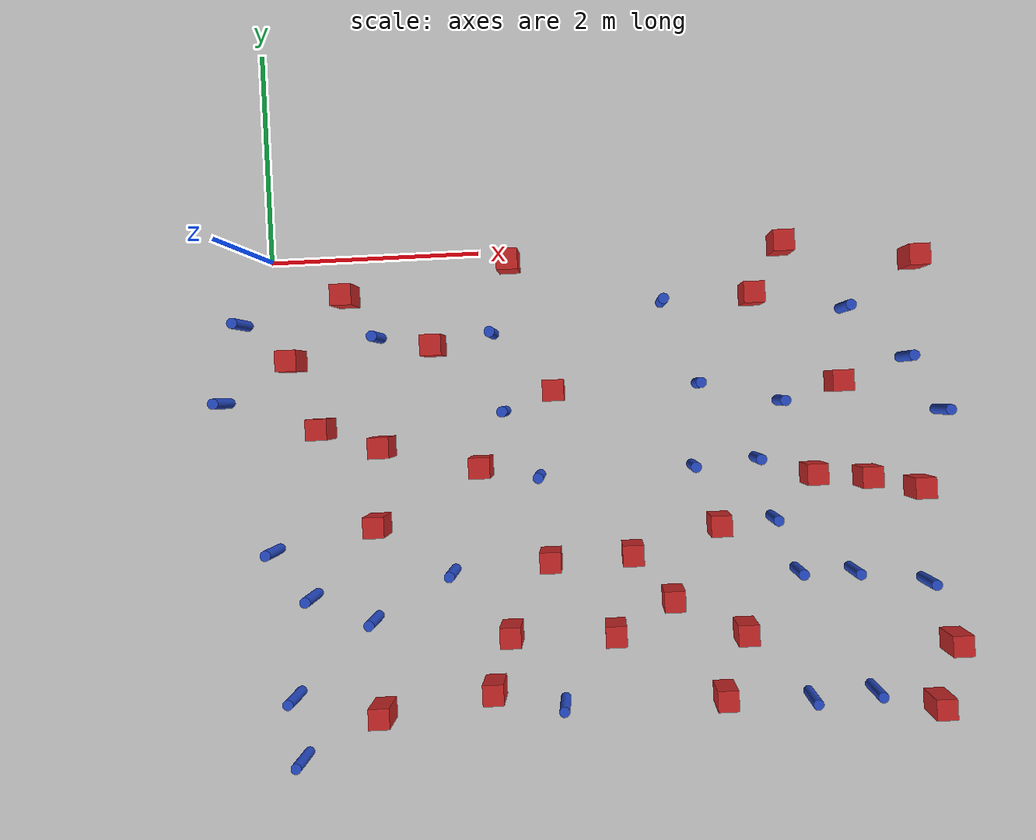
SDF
<sdf version="1.6">
 <world name="default">
  <model name="ground_plane">
   <static>1</static>
   <link name="link">
    <collision name="collision">
     <geometry><plane><normal>0 0 1</normal><size>100 100</size></plane></geometry>
     <surface><friction><ode><mu>100</mu><mu2>50</mu2></ode></friction></surface>
    </collision>
    <visual name="visual">
     <cast_shadows>0</cast_shadows>
     <geometry><plane><normal>0 0 1</normal><size>100 100</size></plane></geometry>
     <material>
      <ambient>1.0 1.0 1.0 1.0</ambient>
      <diffuse>0.8 0.8 0.8 1.0</diffuse>
      <specular>0.01 0.01 0.01 1.000000</specular>
     </material>
    </visual>
   </link>
  </model>
  <model name="square_post_obstacle1">
   <static>true</static>
   <pose>2.30079140672 -0.113341108883 1.91545236811e-07 -7.35059704564e-06 1.12565212e-07 2.39332434364e-05</pose>
   <link name="link">
    <pose>0 0 0.25 0 -0 0</pose>
    <inertial>
     <mass>100</mass>
     <inertia>
      <ixx>0.166667</ixx>
      <ixy>0</ixy>
      <ixz>0</ixz>
      <iyy>0.166667</iyy>
      <iyz>0</iyz>
      <izz>0.166667</izz>
     </inertia>
    </inertial>
    <collision name="collision"><geometry><box><size>.2 .2 .5</size></box></geometry></collision>
    <visual name="visual">
     <geometry><box><size>.2 .2 .5</size></box></geometry>
     <material>
      <script><name>Gazebo/Red</name><uri>file://media/materials/scripts/gazebo.material</uri></script>
     </material>
    </visual>
   </link>
  </model>
  <model name="pole_obstacle1">
   <static>true</static>
   <pose>2.11567827239 -0.791708799903 7.38925637345e-09 -8.471706928e-08 1.24976765177e-08 -1.74513093012e-07</pose>
   <link name="link">
    <pose>0 0 0.3 0 -0 0</pose>
    <inertial>
     <mass>1</mass>
     <inertia><ixx>0.145833</ixx><ixy>0</ixy><ixz>0</ixz><iyy>0.145833</iyy><iyz>0</iyz><izz>0.125</izz></inertia>
    </inertial>
    <collision name="collision">
     <geometry><cylinder><radius>0.05</radius><length>.6</length></cylinder></geometry>
    </collision>
    <visual name="visual">
     <geometry><cylinder><radius>0.05</radius><length>.6</length></cylinder></geometry>
     <material>
      <script><name>Gazebo/Blue</name><uri>file://media/materials/scripts/gazebo.material</uri></script>
     </material>
    </visual>
   </link>
  </model>
  <model name="pole_obstacle2">
   <static>true</static>
   <pose>6.14572191631 -3.33567524918 7.38925637345e-09 -8.47170692798e-08 1.24976764937e-08 -1.74513093023e-07</pose>
   <link name="link">
    <pose>0 0 0.3 0 -0 0</pose>
    <inertial>
     <mass>1</mass>
     <inertia><ixx>0.145833</ixx><ixy>0</ixy><ixz>0</ixz><iyy>0.145833</iyy><iyz>0</iyz><izz>0.125</izz></inertia>
    </inertial>
    <collision name="collision">
     <geometry><cylinder><radius>0.05</radius><length>.6</length></cylinder></geometry>
    </collision>
    <visual name="visual">
     <geometry><cylinder><radius>0.05</radius><length>.6</length></cylinder></geometry>
     <material>
      <script><name>Gazebo/Blue</name><uri>file://media/materials/scripts/gazebo.material</uri></script>
     </material>
    </visual>
   </link>
  </model>
  <model name="square_post_obstacle5">
   <static>true</static>
   <pose>4.39867281722 -3.73941172745 1.91545236811e-07 -7.35059704564e-06 1.12565212e-07 2.39332434364e-05</pose>
   <link name="link">
    <pose>0 0 0.25 0 -0 0</pose>
    <inertial>
     <mass>100</mass>
     <inertia>
      <ixx>0.166667</ixx>
      <ixy>0</ixy>
      <ixz>0</ixz>
      <iyy>0.166667</iyy>
      <iyz>0</iyz>
      <izz>0.166667</izz>
     </inertia>
    </inertial>
    <collision name="collision"><geometry><box><size>.2 .2 .5</size></box></geometry></collision>
    <visual name="visual">
     <geometry><box><size>.2 .2 .5</size></box></geometry>
     <material>
      <script><name>Gazebo/Red</name><uri>file://media/materials/scripts/gazebo.material</uri></script>
     </material>
    </visual>
   </link>
  </model>
  <model name="square_post_obstacle7">
   <static>true</static>
   <pose>0.733176663758 -0.373524283608 1.91545236811e-07 -7.35059704564e-06 1.12565212e-07 2.39332434364e-05</pose>
   <link name="link">
    <pose>0 0 0.25 0 -0 0</pose>
    <inertial>
     <mass>100</mass>
     <inertia>
      <ixx>0.166667</ixx>
      <ixy>0</ixy>
      <ixz>0</ixz>
      <iyy>0.166667</iyy>
      <iyz>0</iyz>
      <izz>0.166667</izz>
     </inertia>
    </inertial>
    <collision name="collision"><geometry><box><size>.2 .2 .5</size></box></geometry></collision>
    <visual name="visual">
     <geometry><box><size>.2 .2 .5</size></box></geometry>
     <material>
      <script><name>Gazebo/Red</name><uri>file://media/materials/scripts/gazebo.material</uri></script>
     </material>
    </visual>
   </link>
  </model>
  <model name="square_post_obstacle10">
   <static>true</static>
   <pose>0.908520756154 -4.35322302698 1.91545236811e-07 -7.35059704564e-06 1.12565212e-07 2.39332434364e-05</pose>
   <link name="link">
    <pose>0 0 0.25 0 -0 0</pose>
    <inertial>
     <mass>100</mass>
     <inertia>
      <ixx>0.166667</ixx>
      <ixy>0</ixy>
      <ixz>0</ixz>
      <iyy>0.166667</iyy>
      <iyz>0</iyz>
      <izz>0.166667</izz>
     </inertia>
    </inertial>
    <collision name="collision"><geometry><box><size>.2 .2 .5</size></box></geometry></collision>
    <visual name="visual">
     <geometry><box><size>.2 .2 .5</size></box></geometry>
     <material>
      <script><name>Gazebo/Red</name><uri>file://media/materials/scripts/gazebo.material</uri></script>
     </material>
    </visual>
   </link>
  </model>
  <model name="square_post_obstacle13">
   <static>true</static>
   <pose>5.39153406921 -1.39861252525 1.91545236811e-07 -7.35059704564e-06 1.12565212e-07 2.39332434364e-05</pose>
   <link name="link">
    <pose>0 0 0.25 0 -0 0</pose>
    <inertial>
     <mass>100</mass>
     <inertia>
      <ixx>0.166667</ixx>
      <ixy>0</ixy>
      <ixz>0</ixz>
      <iyy>0.166667</iyy>
      <iyz>0</iyz>
      <izz>0.166667</izz>
     </inertia>
    </inertial>
    <collision name="collision"><geometry><box><size>.2 .2 .5</size></box></geometry></collision>
    <visual name="visual">
     <geometry><box><size>.2 .2 .5</size></box></geometry>
     <material>
      <script><name>Gazebo/Red</name><uri>file://media/materials/scripts/gazebo.material</uri></script>
     </material>
    </visual>
   </link>
  </model>
  <model name="square_post_obstacle15">
   <static>true</static>
   <pose>1.01795629702 -1.82561163222 1.91545236811e-07 -7.35059704564e-06 1.12565212e-07 2.39332434364e-05</pose>
   <link name="link">
    <pose>0 0 0.25 0 -0 0</pose>
    <inertial>
     <mass>100</mass>
     <inertia>
      <ixx>0.166667</ixx>
      <ixy>0</ixy>
      <ixz>0</ixz>
      <iyy>0.166667</iyy>
      <iyz>0</iyz>
      <izz>0.166667</izz>
     </inertia>
    </inertial>
    <collision name="collision"><geometry><box><size>.2 .2 .5</size></box></geometry></collision>
    <visual name="visual">
     <geometry><box><size>.2 .2 .5</size></box></geometry>
     <material>
      <script><name>Gazebo/Red</name><uri>file://media/materials/scripts/gazebo.material</uri></script>
     </material>
    </visual>
   </link>
  </model>
  <model name="square_post_obstacle16">
   <static>true</static>
   <pose>4.59854409013 -0.532294423076 1.91545236811e-07 -7.35059704564e-06 1.12565212e-07 2.39332434364e-05</pose>
   <link name="link">
    <pose>0 0 0.25 0 -0 0</pose>
    <inertial>
     <mass>100</mass>
     <inertia>
      <ixx>0.166667</ixx>
      <ixy>0</ixy>
      <ixz>0</ixz>
      <iyy>0.166667</iyy>
      <iyz>0</iyz>
      <izz>0.166667</izz>
     </inertia>
    </inertial>
    <collision name="collision"><geometry><box><size>.2 .2 .5</size></box></geometry></collision>
    <visual name="visual">
     <geometry><box><size>.2 .2 .5</size></box></geometry>
     <material>
      <script><name>Gazebo/Red</name><uri>file://media/materials/scripts/gazebo.material</uri></script>
     </material>
    </visual>
   </link>
  </model>
  <model name="pole_obstacle10">
   <static>true</static>
   <pose>6.03867695936 -1.1972389349 7.38925637345e-09 -8.471706928e-08 1.24976765134e-08 -1.74513093015e-07</pose>
   <link name="link">
    <pose>0 0 0.3 0 -0 0</pose>
    <inertial>
     <mass>1</mass>
     <inertia><ixx>0.145833</ixx><ixy>0</ixy><ixz>0</ixz><iyy>0.145833</iyy><iyz>0</iyz><izz>0.125</izz></inertia>
    </inertial>
    <collision name="collision">
     <geometry><cylinder><radius>0.05</radius><length>.6</length></cylinder></geometry>
    </collision>
    <visual name="visual">
     <geometry><cylinder><radius>0.05</radius><length>.6</length></cylinder></geometry>
     <material>
      <script><name>Gazebo/Blue</name><uri>file://media/materials/scripts/gazebo.material</uri></script>
     </material>
    </visual>
   </link>
  </model>
  <model name="square_post_obstacle31">
   <static>true</static>
   <pose>6.16114094177 -0.252760421384 1.91545236811e-07 -7.35059704564e-06 1.12565212e-07 2.39332434364e-05</pose>
   <link name="link">
    <pose>0 0 0.25 0 -0 0</pose>
    <inertial>
     <mass>100</mass>
     <inertia>
      <ixx>0.166667</ixx>
      <ixy>0</ixy>
      <ixz>0</ixz>
      <iyy>0.166667</iyy>
      <iyz>0</iyz>
      <izz>0.166667</izz>
     </inertia>
    </inertial>
    <collision name="collision"><geometry><box><size>.2 .2 .5</size></box></geometry></collision>
    <visual name="visual">
     <geometry><box><size>.2 .2 .5</size></box></geometry>
     <material>
      <script><name>Gazebo/Red</name><uri>file://media/materials/scripts/gazebo.material</uri></script>
     </material>
    </visual>
   </link>
  </model>
  <model name="square_post_obstacle38">
   <static>true</static>
   <pose>0.939679087753 -2.56736024644 1.91545236811e-07 -7.35059704564e-06 1.12565212e-07 2.39332434364e-05</pose>
   <link name="link">
    <pose>0 0 0.25 0 -0 0</pose>
    <inertial>
     <mass>100</mass>
     <inertia>
      <ixx>0.166667</ixx>
      <ixy>0</ixy>
      <ixz>0</ixz>
      <iyy>0.166667</iyy>
      <iyz>0</iyz>
      <izz>0.166667</izz>
     </inertia>
    </inertial>
    <collision name="collision"><geometry><box><size>.2 .2 .5</size></box></geometry></collision>
    <visual name="visual">
     <geometry><box><size>.2 .2 .5</size></box></geometry>
     <material>
      <script><name>Gazebo/Red</name><uri>file://media/materials/scripts/gazebo.material</uri></script>
     </material>
    </visual>
   </link>
  </model>
  <model name="square_post_obstacle51">
   <static>true</static>
   <pose>5.11152029376 -2.26554256826 1.91545236811e-07 -7.35059704564e-06 1.12565212e-07 2.39332434364e-05</pose>
   <link name="link">
    <pose>0 0 0.25 0 -0 0</pose>
    <inertial>
     <mass>100</mass>
     <inertia>
      <ixx>0.166667</ixx>
      <ixy>0</ixy>
      <ixz>0</ixz>
      <iyy>0.166667</iyy>
      <iyz>0</iyz>
      <izz>0.166667</izz>
     </inertia>
    </inertial>
    <collision name="collision"><geometry><box><size>.2 .2 .5</size></box></geometry></collision>
    <visual name="visual">
     <geometry><box><size>.2 .2 .5</size></box></geometry>
     <material>
      <script><name>Gazebo/Red</name><uri>file://media/materials/scripts/gazebo.material</uri></script>
     </material>
    </visual>
   </link>
  </model>
  <model name="square_post_obstacle53">
   <static>true</static>
   <pose>0.192815053591 -0.969705318116 1.91545236811e-07 -7.35059704564e-06 1.12565212e-07 2.39332434364e-05</pose>
   <link name="link">
    <pose>0 0 0.25 0 -0 0</pose>
    <inertial>
     <mass>100</mass>
     <inertia>
      <ixx>0.166667</ixx>
      <ixy>0</ixy>
      <ixz>0</ixz>
      <iyy>0.166667</iyy>
      <iyz>0</iyz>
      <izz>0.166667</izz>
     </inertia>
    </inertial>
    <collision name="collision"><geometry><box><size>.2 .2 .5</size></box></geometry></collision>
    <visual name="visual">
     <geometry><box><size>.2 .2 .5</size></box></geometry>
     <material>
      <script><name>Gazebo/Red</name><uri>file://media/materials/scripts/gazebo.material</uri></script>
     </material>
    </visual>
   </link>
  </model>
  <model name="square_post_obstacle54">
   <static>true</static>
   <pose>4.8971762373 -0.0615124609382 1.91545236811e-07 -7.35059704564e-06 1.12565212e-07 2.39332434364e-05</pose>
   <link name="link">
    <pose>0 0 0.25 0 -0 0</pose>
    <inertial>
     <mass>100</mass>
     <inertia>
      <ixx>0.166667</ixx>
      <ixy>0</ixy>
      <ixz>0</ixz>
      <iyy>0.166667</iyy>
      <iyz>0</iyz>
      <izz>0.166667</izz>
     </inertia>
    </inertial>
    <collision name="collision"><geometry><box><size>.2 .2 .5</size></box></geometry></collision>
    <visual name="visual">
     <geometry><box><size>.2 .2 .5</size></box></geometry>
     <material>
      <script><name>Gazebo/Red</name><uri>file://media/materials/scripts/gazebo.material</uri></script>
     </material>
    </visual>
   </link>
  </model>
  <model name="pole_obstacle55">
   <static>true</static>
   <pose>4.05408893572 -1.35647142487 7.38925637345e-09 -8.471706928e-08 1.24976765134e-08 -1.74513093015e-07</pose>
   <link name="link">
    <pose>0 0 0.3 0 -0 0</pose>
    <inertial>
     <mass>1</mass>
     <inertia><ixx>0.145833</ixx><ixy>0</ixy><ixz>0</ixz><iyy>0.145833</iyy><iyz>0</iyz><izz>0.125</izz></inertia>
    </inertial>
    <collision name="collision">
     <geometry><cylinder><radius>0.05</radius><length>.6</length></cylinder></geometry>
    </collision>
    <visual name="visual">
     <geometry><cylinder><radius>0.05</radius><length>.6</length></cylinder></geometry>
     <material>
      <script><name>Gazebo/Blue</name><uri>file://media/materials/scripts/gazebo.material</uri></script>
     </material>
    </visual>
   </link>
  </model>
  <model name="pole_obstacle56">
   <static>true</static>
   <pose>-0.0512441013859 -2.76988041171 7.38925637345e-09 -8.47170692793e-08 1.24976764354e-08 -1.74513093044e-07</pose>
   <link name="link">
    <pose>0 0 0.3 0 -0 0</pose>
    <inertial>
     <mass>1</mass>
     <inertia><ixx>0.145833</ixx><ixy>0</ixy><ixz>0</ixz><iyy>0.145833</iyy><iyz>0</iyz><izz>0.125</izz></inertia>
    </inertial>
    <collision name="collision">
     <geometry><cylinder><radius>0.05</radius><length>.6</length></cylinder></geometry>
    </collision>
    <visual name="visual">
     <geometry><cylinder><radius>0.05</radius><length>.6</length></cylinder></geometry>
     <material>
      <script><name>Gazebo/Blue</name><uri>file://media/materials/scripts/gazebo.material</uri></script>
     </material>
    </visual>
   </link>
  </model>
  <model name="pole_obstacle59">
   <static>true</static>
   <pose>0.876313427271 -3.46293113963 7.38925637345e-09 -8.47170692799e-08 1.2497676509e-08 -1.74513093016e-07</pose>
   <link name="link">
    <pose>0 0 0.3 0 -0 0</pose>
    <inertial>
     <mass>1</mass>
     <inertia><ixx>0.145833</ixx><ixy>0</ixy><ixz>0</ixz><iyy>0.145833</iyy><iyz>0</iyz><izz>0.125</izz></inertia>
    </inertial>
    <collision name="collision">
     <geometry><cylinder><radius>0.05</radius><length>.6</length></cylinder></geometry>
    </collision>
    <visual name="visual">
     <geometry><cylinder><radius>0.05</radius><length>.6</length></cylinder></geometry>
     <material>
      <script><name>Gazebo/Blue</name><uri>file://media/materials/scripts/gazebo.material</uri></script>
     </material>
    </visual>
   </link>
  </model>
  <model name="square_post_obstacle68">
   <static>true</static>
   <pose>5.62580793836 -2.31774451256 1.91545236811e-07 -7.35059704564e-06 1.12565212e-07 2.39332434364e-05</pose>
   <link name="link">
    <pose>0 0 0.25 0 -0 0</pose>
    <inertial>
     <mass>100</mass>
     <inertia>
      <ixx>0.166667</ixx>
      <ixy>0</ixy>
      <ixz>0</ixz>
      <iyy>0.166667</iyy>
      <iyz>0</iyz>
      <izz>0.166667</izz>
     </inertia>
    </inertial>
    <collision name="collision"><geometry><box><size>.2 .2 .5</size></box></geometry></collision>
    <visual name="visual">
     <geometry><box><size>.2 .2 .5</size></box></geometry>
     <material>
      <script><name>Gazebo/Red</name><uri>file://media/materials/scripts/gazebo.material</uri></script>
     </material>
    </visual>
   </link>
  </model>
  <model name="pole_obstacle69">
   <static>true</static>
   <pose>5.60208381373 -4.34940651973 7.38925637345e-09 -8.47170692796e-08 1.24976764786e-08 -1.74513093032e-07</pose>
   <link name="link">
    <pose>0 0 0.3 0 -0 0</pose>
    <inertial>
     <mass>1</mass>
     <inertia><ixx>0.145833</ixx><ixy>0</ixy><ixz>0</ixz><iyy>0.145833</iyy><iyz>0</iyz><izz>0.125</izz></inertia>
    </inertial>
    <collision name="collision">
     <geometry><cylinder><radius>0.05</radius><length>.6</length></cylinder></geometry>
    </collision>
    <visual name="visual">
     <geometry><cylinder><radius>0.05</radius><length>.6</length></cylinder></geometry>
     <material>
      <script><name>Gazebo/Blue</name><uri>file://media/materials/scripts/gazebo.material</uri></script>
     </material>
    </visual>
   </link>
  </model>
  <model name="square_post_obstacle78">
   <static>true</static>
   <pose>2.17065450185 -3.65672462471 1.91545236811e-07 -7.35059704564e-06 1.12565212e-07 2.39332434364e-05</pose>
   <link name="link">
    <pose>0 0 0.25 0 -0 0</pose>
    <inertial>
     <mass>100</mass>
     <inertia>
      <ixx>0.166667</ixx>
      <ixy>0</ixy>
      <ixz>0</ixz>
      <iyy>0.166667</iyy>
      <iyz>0</iyz>
      <izz>0.166667</izz>
     </inertia>
    </inertial>
    <collision name="collision"><geometry><box><size>.2 .2 .5</size></box></geometry></collision>
    <visual name="visual">
     <geometry><box><size>.2 .2 .5</size></box></geometry>
     <material>
      <script><name>Gazebo/Red</name><uri>file://media/materials/scripts/gazebo.material</uri></script>
     </material>
    </visual>
   </link>
  </model>
  <model name="square_post_obstacle80">
   <static>true</static>
   <pose>3.16087847858 -3.69235327206 1.91545236811e-07 -7.35059704564e-06 1.12565212e-07 2.39332434364e-05</pose>
   <link name="link">
    <pose>0 0 0.25 0 -0 0</pose>
    <inertial>
     <mass>100</mass>
     <inertia>
      <ixx>0.166667</ixx>
      <ixy>0</ixy>
      <ixz>0</ixz>
      <iyy>0.166667</iyy>
      <iyz>0</iyz>
      <izz>0.166667</izz>
     </inertia>
    </inertial>
    <collision name="collision"><geometry><box><size>.2 .2 .5</size></box></geometry></collision>
    <visual name="visual">
     <geometry><box><size>.2 .2 .5</size></box></geometry>
     <material>
      <script><name>Gazebo/Red</name><uri>file://media/materials/scripts/gazebo.material</uri></script>
     </material>
    </visual>
   </link>
  </model>
  <model name="pole_obstacle90">
   <static>true</static>
   <pose>4.92131051116 -3.18254481066 7.38925637345e-09 -8.47170692798e-08 1.24976764937e-08 -1.74513093023e-07</pose>
   <link name="link">
    <pose>0 0 0.3 0 -0 0</pose>
    <inertial>
     <mass>1</mass>
     <inertia><ixx>0.145833</ixx><ixy>0</ixy><ixz>0</ixz><iyy>0.145833</iyy><iyz>0</iyz><izz>0.125</izz></inertia>
    </inertial>
    <collision name="collision">
     <geometry><cylinder><radius>0.05</radius><length>.6</length></cylinder></geometry>
    </collision>
    <visual name="visual">
     <geometry><cylinder><radius>0.05</radius><length>.6</length></cylinder></geometry>
     <material>
      <script><name>Gazebo/Blue</name><uri>file://media/materials/scripts/gazebo.material</uri></script>
     </material>
    </visual>
   </link>
  </model>
  <model name="square_post_obstacle87">
   <static>true</static>
   <pose>2.6758172485 -1.36338023564 1.91545236811e-07 -7.35059704564e-06 1.12565212e-07 2.39332434364e-05</pose>
   <link name="link">
    <pose>0 0 0.25 0 -0 0</pose>
    <inertial>
     <mass>100</mass>
     <inertia>
      <ixx>0.166667</ixx>
      <ixy>0</ixy>
      <ixz>0</ixz>
      <iyy>0.166667</iyy>
      <iyz>0</iyz>
      <izz>0.166667</izz>
     </inertia>
    </inertial>
    <collision name="collision"><geometry><box><size>.2 .2 .5</size></box></geometry></collision>
    <visual name="visual">
     <geometry><box><size>.2 .2 .5</size></box></geometry>
     <material>
      <script><name>Gazebo/Red</name><uri>file://media/materials/scripts/gazebo.material</uri></script>
     </material>
    </visual>
   </link>
  </model>
  <model name="pole_obstacle108">
   <static>true</static>
   <pose>4.57885635576 -2.09597610602 7.38925637345e-09 -8.47170692798e-08 1.24976764937e-08 -1.74513093023e-07</pose>
   <link name="link">
    <pose>0 0 0.3 0 -0 0</pose>
    <inertial>
     <mass>1</mass>
     <inertia><ixx>0.145833</ixx><ixy>0</ixy><ixz>0</ixz><iyy>0.145833</iyy><iyz>0</iyz><izz>0.125</izz></inertia>
    </inertial>
    <collision name="collision">
     <geometry><cylinder><radius>0.05</radius><length>.6</length></cylinder></geometry>
    </collision>
    <visual name="visual">
     <geometry><cylinder><radius>0.05</radius><length>.6</length></cylinder></geometry>
     <material>
      <script><name>Gazebo/Blue</name><uri>file://media/materials/scripts/gazebo.material</uri></script>
     </material>
    </visual>
   </link>
  </model>
  <model name="pole_obstacle109">
   <static>true</static>
   <pose>0.0940463464536 -4.15824679124 7.38925637345e-09 -8.47170692799e-08 1.24976765062e-08 -1.74513093018e-07</pose>
   <link name="link">
    <pose>0 0 0.3 0 -0 0</pose>
    <inertial>
     <mass>1</mass>
     <inertia><ixx>0.145833</ixx><ixy>0</ixy><ixz>0</ixz><iyy>0.145833</iyy><iyz>0</iyz><izz>0.125</izz></inertia>
    </inertial>
    <collision name="collision">
     <geometry><cylinder><radius>0.05</radius><length>.6</length></cylinder></geometry>
    </collision>
    <visual name="visual">
     <geometry><cylinder><radius>0.05</radius><length>.6</length></cylinder></geometry>
     <material>
      <script><name>Gazebo/Blue</name><uri>file://media/materials/scripts/gazebo.material</uri></script>
     </material>
    </visual>
   </link>
  </model>
  <model name="square_post_obstacle99">
   <static>true</static>
   <pose>6.11551478328 -2.44123113113 1.91545236811e-07 -7.35059704564e-06 1.12565212e-07 2.39332434364e-05</pose>
   <link name="link">
    <pose>0 0 0.25 0 -0 0</pose>
    <inertial>
     <mass>100</mass>
     <inertia>
      <ixx>0.166667</ixx>
      <ixy>0</ixy>
      <ixz>0</ixz>
      <iyy>0.166667</iyy>
      <iyz>0</iyz>
      <izz>0.166667</izz>
     </inertia>
    </inertial>
    <collision name="collision"><geometry><box><size>.2 .2 .5</size></box></geometry></collision>
    <visual name="visual">
     <geometry><box><size>.2 .2 .5</size></box></geometry>
     <material>
      <script><name>Gazebo/Red</name><uri>file://media/materials/scripts/gazebo.material</uri></script>
     </material>
    </visual>
   </link>
  </model>
  <model name="pole_obstacle115">
   <static>true</static>
   <pose>1.64175488709 -3.04700240772 7.38925637345e-09 -8.47170692799e-08 1.24976765053e-08 -1.74513093017e-07</pose>
   <link name="link">
    <pose>0 0 0.3 0 -0 0</pose>
    <inertial>
     <mass>1</mass>
     <inertia><ixx>0.145833</ixx><ixy>0</ixy><ixz>0</ixz><iyy>0.145833</iyy><iyz>0</iyz><izz>0.125</izz></inertia>
    </inertial>
    <collision name="collision">
     <geometry><cylinder><radius>0.05</radius><length>.6</length></cylinder></geometry>
    </collision>
    <visual name="visual">
     <geometry><cylinder><radius>0.05</radius><length>.6</length></cylinder></geometry>
     <material>
      <script><name>Gazebo/Blue</name><uri>file://media/materials/scripts/gazebo.material</uri></script>
     </material>
    </visual>
   </link>
  </model>
  <model name="square_post_obstacle104">
   <static>true</static>
   <pose>1.54926097011 -0.883187561532 1.91545236811e-07 -7.35059704564e-06 1.12565212e-07 2.39332434364e-05</pose>
   <link name="link">
    <pose>0 0 0.25 0 -0 0</pose>
    <inertial>
     <mass>100</mass>
     <inertia>
      <ixx>0.166667</ixx>
      <ixy>0</ixy>
      <ixz>0</ixz>
      <iyy>0.166667</iyy>
      <iyz>0</iyz>
      <izz>0.166667</izz>
     </inertia>
    </inertial>
    <collision name="collision"><geometry><box><size>.2 .2 .5</size></box></geometry></collision>
    <visual name="visual">
     <geometry><box><size>.2 .2 .5</size></box></geometry>
     <material>
      <script><name>Gazebo/Red</name><uri>file://media/materials/scripts/gazebo.material</uri></script>
     </material>
    </visual>
   </link>
  </model>
  <model name="pole_obstacle119">
   <static>true</static>
   <pose>4.99891261431 -4.38830612221 7.38925637345e-09 -8.47170692796e-08 1.24976764786e-08 -1.74513093032e-07</pose>
   <link name="link">
    <pose>0 0 0.3 0 -0 0</pose>
    <inertial>
     <mass>1</mass>
     <inertia><ixx>0.145833</ixx><ixy>0</ixy><ixz>0</ixz><iyy>0.145833</iyy><iyz>0</iyz><izz>0.125</izz></inertia>
    </inertial>
    <collision name="collision">
     <geometry><cylinder><radius>0.05</radius><length>.6</length></cylinder></geometry>
    </collision>
    <visual name="visual">
     <geometry><cylinder><radius>0.05</radius><length>.6</length></cylinder></geometry>
     <material>
      <script><name>Gazebo/Blue</name><uri>file://media/materials/scripts/gazebo.material</uri></script>
     </material>
    </visual>
   </link>
  </model>
  <model name="square_post_obstacle110">
   <static>true</static>
   <pose>4.19167608932 -2.70724154361 1.91545236811e-07 -7.35059704564e-06 1.12565212e-07 2.39332434364e-05</pose>
   <link name="link">
    <pose>0 0 0.25 0 -0 0</pose>
    <inertial>
     <mass>100</mass>
     <inertia>
      <ixx>0.166667</ixx>
      <ixy>0</ixy>
      <ixz>0</ixz>
      <iyy>0.166667</iyy>
      <iyz>0</iyz>
      <izz>0.166667</izz>
     </inertia>
    </inertial>
    <collision name="collision"><geometry><box><size>.2 .2 .5</size></box></geometry></collision>
    <visual name="visual">
     <geometry><box><size>.2 .2 .5</size></box></geometry>
     <material>
      <script><name>Gazebo/Red</name><uri>file://media/materials/scripts/gazebo.material</uri></script>
     </material>
    </visual>
   </link>
  </model>
  <model name="pole_obstacle123">
   <static>true</static>
   <pose>0.141946386819 -4.74956099167 7.38925637345e-09 -8.471706928e-08 1.24976765036e-08 -1.74513093019e-07</pose>
   <link name="link">
    <pose>0 0 0.3 0 -0 0</pose>
    <inertial>
     <mass>1</mass>
     <inertia><ixx>0.145833</ixx><ixy>0</ixy><ixz>0</ixz><iyy>0.145833</iyy><iyz>0</iyz><izz>0.125</izz></inertia>
    </inertial>
    <collision name="collision">
     <geometry><cylinder><radius>0.05</radius><length>.6</length></cylinder></geometry>
    </collision>
    <visual name="visual">
     <geometry><cylinder><radius>0.05</radius><length>.6</length></cylinder></geometry>
     <material>
      <script><name>Gazebo/Blue</name><uri>file://media/materials/scripts/gazebo.material</uri></script>
     </material>
    </visual>
   </link>
  </model>
  <model name="pole_obstacle124">
   <static>true</static>
   <pose>6.35571234363 -1.71734408536 7.38925637345e-09 -8.471706928e-08 1.24976765134e-08 -1.74513093015e-07</pose>
   <link name="link">
    <pose>0 0 0.3 0 -0 0</pose>
    <inertial>
     <mass>1</mass>
     <inertia><ixx>0.145833</ixx><ixy>0</ixy><ixz>0</ixz><iyy>0.145833</iyy><iyz>0</iyz><izz>0.125</izz></inertia>
    </inertial>
    <collision name="collision">
     <geometry><cylinder><radius>0.05</radius><length>.6</length></cylinder></geometry>
    </collision>
    <visual name="visual">
     <geometry><cylinder><radius>0.05</radius><length>.6</length></cylinder></geometry>
     <material>
      <script><name>Gazebo/Blue</name><uri>file://media/materials/scripts/gazebo.material</uri></script>
     </material>
    </visual>
   </link>
  </model>
  <model name="square_post_obstacle116">
   <static>true</static>
   <pose>2.57589893028 -2.97308937479 1.91545236811e-07 -7.35059704564e-06 1.12565212e-07 2.39332434364e-05</pose>
   <link name="link">
    <pose>0 0 0.25 0 -0 0</pose>
    <inertial>
     <mass>100</mass>
     <inertia>
      <ixx>0.166667</ixx>
      <ixy>0</ixy>
      <ixz>0</ixz>
      <iyy>0.166667</iyy>
      <iyz>0</iyz>
      <izz>0.166667</izz>
     </inertia>
    </inertial>
    <collision name="collision"><geometry><box><size>.2 .2 .5</size></box></geometry></collision>
    <visual name="visual">
     <geometry><box><size>.2 .2 .5</size></box></geometry>
     <material>
      <script><name>Gazebo/Red</name><uri>file://media/materials/scripts/gazebo.material</uri></script>
     </material>
    </visual>
   </link>
  </model>
  <model name="pole_obstacle139">
   <static>true</static>
   <pose>2.64874328146 -4.34303579645 7.38925637345e-09 -8.47170692798e-08 1.24976765033e-08 -1.74513093019e-07</pose>
   <link name="link">
    <pose>0 0 0.3 0 -0 0</pose>
    <inertial>
     <mass>1</mass>
     <inertia><ixx>0.145833</ixx><ixy>0</ixy><ixz>0</ixz><iyy>0.145833</iyy><iyz>0</iyz><izz>0.125</izz></inertia>
    </inertial>
    <collision name="collision">
     <geometry><cylinder><radius>0.05</radius><length>.6</length></cylinder></geometry>
    </collision>
    <visual name="visual">
     <geometry><cylinder><radius>0.05</radius><length>.6</length></cylinder></geometry>
     <material>
      <script><name>Gazebo/Blue</name><uri>file://media/materials/scripts/gazebo.material</uri></script>
     </material>
    </visual>
   </link>
  </model>
  <model name="square_post_obstacle126">
   <static>true</static>
   <pose>3.72285098523 -3.39160508271 1.91545236811e-07 -7.35059704564e-06 1.12565212e-07 2.39332434364e-05</pose>
   <link name="link">
    <pose>0 0 0.25 0 -0 0</pose>
    <inertial>
     <mass>100</mass>
     <inertia>
      <ixx>0.166667</ixx>
      <ixy>0</ixy>
      <ixz>0</ixz>
      <iyy>0.166667</iyy>
      <iyz>0</iyz>
      <izz>0.166667</izz>
     </inertia>
    </inertial>
    <collision name="collision"><geometry><box><size>.2 .2 .5</size></box></geometry></collision>
    <visual name="visual">
     <geometry><box><size>.2 .2 .5</size></box></geometry>
     <material>
      <script><name>Gazebo/Red</name><uri>file://media/materials/scripts/gazebo.material</uri></script>
     </material>
    </visual>
   </link>
  </model>
  <model name="pole_obstacle143">
   <static>true</static>
   <pose>4.71281803096 -2.67101172031 7.38925637345e-09 -8.47170692798e-08 1.24976764937e-08 -1.74513093023e-07</pose>
   <link name="link">
    <pose>0 0 0.3 0 -0 0</pose>
    <inertial>
     <mass>1</mass>
     <inertia><ixx>0.145833</ixx><ixy>0</ixy><ixz>0</ixz><iyy>0.145833</iyy><iyz>0</iyz><izz>0.125</izz></inertia>
    </inertial>
    <collision name="collision">
     <geometry><cylinder><radius>0.05</radius><length>.6</length></cylinder></geometry>
    </collision>
    <visual name="visual">
     <geometry><cylinder><radius>0.05</radius><length>.6</length></cylinder></geometry>
     <material>
      <script><name>Gazebo/Blue</name><uri>file://media/materials/scripts/gazebo.material</uri></script>
     </material>
    </visual>
   </link>
  </model>
  <model name="square_post_obstacle135">
   <static>true</static>
   <pose>4.1761618442 -4.34227185254 1.91545236811e-07 -7.35059704564e-06 1.12565212e-07 2.39332434364e-05</pose>
   <link name="link">
    <pose>0 0 0.25 0 -0 0</pose>
    <inertial>
     <mass>100</mass>
     <inertia>
      <ixx>0.166667</ixx>
      <ixy>0</ixy>
      <ixz>0</ixz>
      <iyy>0.166667</iyy>
      <iyz>0</iyz>
      <izz>0.166667</izz>
     </inertia>
    </inertial>
    <collision name="collision"><geometry><box><size>.2 .2 .5</size></box></geometry></collision>
    <visual name="visual">
     <geometry><box><size>.2 .2 .5</size></box></geometry>
     <material>
      <script><name>Gazebo/Red</name><uri>file://media/materials/scripts/gazebo.material</uri></script>
     </material>
    </visual>
   </link>
  </model>
  <model name="pole_obstacle146">
   <static>true</static>
   <pose>2.50532626492 -2.1708749217 7.38925637345e-09 -8.47170692798e-08 1.24976764939e-08 -1.74513093025e-07</pose>
   <link name="link">
    <pose>0 0 0.3 0 -0 0</pose>
    <inertial>
     <mass>1</mass>
     <inertia><ixx>0.145833</ixx><ixy>0</ixy><ixz>0</ixz><iyy>0.145833</iyy><iyz>0</iyz><izz>0.125</izz></inertia>
    </inertial>
    <collision name="collision">
     <geometry><cylinder><radius>0.05</radius><length>.6</length></cylinder></geometry>
    </collision>
    <visual name="visual">
     <geometry><cylinder><radius>0.05</radius><length>.6</length></cylinder></geometry>
     <material>
      <script><name>Gazebo/Blue</name><uri>file://media/materials/scripts/gazebo.material</uri></script>
     </material>
    </visual>
   </link>
  </model>
  <model name="square_post_obstacle144">
   <static>true</static>
   <pose>1.98458801407 -4.18298993816 1.91545236811e-07 -7.35059704564e-06 1.12565212e-07 2.39332434364e-05</pose>
   <link name="link">
    <pose>0 0 0.25 0 -0 0</pose>
    <inertial>
     <mass>100</mass>
     <inertia>
      <ixx>0.166667</ixx>
      <ixy>0</ixy>
      <ixz>0</ixz>
      <iyy>0.166667</iyy>
      <iyz>0</iyz>
      <izz>0.166667</izz>
     </inertia>
    </inertial>
    <collision name="collision"><geometry><box><size>.2 .2 .5</size></box></geometry></collision>
    <visual name="visual">
     <geometry><box><size>.2 .2 .5</size></box></geometry>
     <material>
      <script><name>Gazebo/Red</name><uri>file://media/materials/scripts/gazebo.material</uri></script>
     </material>
    </visual>
   </link>
  </model>
  <model name="pole_obstacle157">
   <static>true</static>
   <pose>3.97181151498 -2.1388692852 7.38925637345e-09 -8.47170692796e-08 1.24976764765e-08 -1.74513093035e-07</pose>
   <link name="link">
    <pose>0 0 0.3 0 -0 0</pose>
    <inertial>
     <mass>1</mass>
     <inertia><ixx>0.145833</ixx><ixy>0</ixy><ixz>0</ixz><iyy>0.145833</iyy><iyz>0</iyz><izz>0.125</izz></inertia>
    </inertial>
    <collision name="collision">
     <geometry><cylinder><radius>0.05</radius><length>.6</length></cylinder></geometry>
    </collision>
    <visual name="visual">
     <geometry><cylinder><radius>0.05</radius><length>.6</length></cylinder></geometry>
     <material>
      <script><name>Gazebo/Blue</name><uri>file://media/materials/scripts/gazebo.material</uri></script>
     </material>
    </visual>
   </link>
  </model>
  <model name="pole_obstacle163">
   <static>true</static>
   <pose>5.47625389837 -0.700544040537 7.38925637345e-09 -8.47170692799e-08 1.24976765038e-08 -1.74513093018e-07</pose>
   <link name="link">
    <pose>0 0 0.3 0 -0 0</pose>
    <inertial>
     <mass>1</mass>
     <inertia><ixx>0.145833</ixx><ixy>0</ixy><ixz>0</ixz><iyy>0.145833</iyy><iyz>0</iyz><izz>0.125</izz></inertia>
    </inertial>
    <collision name="collision">
     <geometry><cylinder><radius>0.05</radius><length>.6</length></cylinder></geometry>
    </collision>
    <visual name="visual">
     <geometry><cylinder><radius>0.05</radius><length>.6</length></cylinder></geometry>
     <material>
      <script><name>Gazebo/Blue</name><uri>file://media/materials/scripts/gazebo.material</uri></script>
     </material>
    </visual>
   </link>
  </model>
  <model name="pole_obstacle170">
   <static>true</static>
   <pose>4.82798971888 -1.5594999057 7.38925637345e-09 -8.471706928e-08 1.24976765134e-08 -1.74513093015e-07</pose>
   <link name="link">
    <pose>0 0 0.3 0 -0 0</pose>
    <inertial>
     <mass>1</mass>
     <inertia><ixx>0.145833</ixx><ixy>0</ixy><ixz>0</ixz><iyy>0.145833</iyy><iyz>0</iyz><izz>0.125</izz></inertia>
    </inertial>
    <collision name="collision">
     <geometry><cylinder><radius>0.05</radius><length>.6</length></cylinder></geometry>
    </collision>
    <visual name="visual">
     <geometry><cylinder><radius>0.05</radius><length>.6</length></cylinder></geometry>
     <material>
      <script><name>Gazebo/Blue</name><uri>file://media/materials/scripts/gazebo.material</uri></script>
     </material>
    </visual>
   </link>
  </model>
  <model name="square_post_obstacle161">
   <static>true</static>
   <pose>6.39371514096 -3.93341052397 1.91545236811e-07 -7.35059704564e-06 1.12565212e-07 2.39332434364e-05</pose>
   <link name="link">
    <pose>0 0 0.25 0 -0 0</pose>
    <inertial>
     <mass>100</mass>
     <inertia>
      <ixx>0.166667</ixx>
      <ixy>0</ixy>
      <ixz>0</ixz>
      <iyy>0.166667</iyy>
      <iyz>0</iyz>
      <izz>0.166667</izz>
     </inertia>
    </inertial>
    <collision name="collision"><geometry><box><size>.2 .2 .5</size></box></geometry></collision>
    <visual name="visual">
     <geometry><box><size>.2 .2 .5</size></box></geometry>
     <material>
      <script><name>Gazebo/Red</name><uri>file://media/materials/scripts/gazebo.material</uri></script>
     </material>
    </visual>
   </link>
  </model>
  <model name="square_post_obstacle164">
   <static>true</static>
   <pose>0.447483641449 -1.62815499863 1.91545236811e-07 -7.35059704564e-06 1.12565212e-07 2.39332434364e-05</pose>
   <link name="link">
    <pose>0 0 0.25 0 -0 0</pose>
    <inertial>
     <mass>100</mass>
     <inertia>
      <ixx>0.166667</ixx>
      <ixy>0</ixy>
      <ixz>0</ixz>
      <iyy>0.166667</iyy>
      <iyz>0</iyz>
      <izz>0.166667</izz>
     </inertia>
    </inertial>
    <collision name="collision"><geometry><box><size>.2 .2 .5</size></box></geometry></collision>
    <visual name="visual">
     <geometry><box><size>.2 .2 .5</size></box></geometry>
     <material>
      <script><name>Gazebo/Red</name><uri>file://media/materials/scripts/gazebo.material</uri></script>
     </material>
    </visual>
   </link>
  </model>
  <model name="square_post_obstacle167">
   <static>true</static>
   <pose>6.21118749769 -4.5166251293 1.91545236811e-07 -7.35059704564e-06 1.12565212e-07 2.39332434364e-05</pose>
   <link name="link">
    <pose>0 0 0.25 0 -0 0</pose>
    <inertial>
     <mass>100</mass>
     <inertia>
      <ixx>0.166667</ixx>
      <ixy>0</ixy>
      <ixz>0</ixz>
      <iyy>0.166667</iyy>
      <iyz>0</iyz>
      <izz>0.166667</izz>
     </inertia>
    </inertial>
    <collision name="collision"><geometry><box><size>.2 .2 .5</size></box></geometry></collision>
    <visual name="visual">
     <geometry><box><size>.2 .2 .5</size></box></geometry>
     <material>
      <script><name>Gazebo/Red</name><uri>file://media/materials/scripts/gazebo.material</uri></script>
     </material>
    </visual>
   </link>
  </model>
  <model name="pole_obstacle178">
   <static>true</static>
   <pose>1.0242684985 -0.780845904981 7.38925637345e-09 -8.47170692798e-08 1.24976764942e-08 -1.74513093024e-07</pose>
   <link name="link">
    <pose>0 0 0.3 0 -0 0</pose>
    <inertial>
     <mass>1</mass>
     <inertia><ixx>0.145833</ixx><ixy>0</ixy><ixz>0</ixz><iyy>0.145833</iyy><iyz>0</iyz><izz>0.125</izz></inertia>
    </inertial>
    <collision name="collision">
     <geometry><cylinder><radius>0.05</radius><length>.6</length></cylinder></geometry>
    </collision>
    <visual name="visual">
     <geometry><cylinder><radius>0.05</radius><length>.6</length></cylinder></geometry>
     <material>
      <script><name>Gazebo/Blue</name><uri>file://media/materials/scripts/gazebo.material</uri></script>
     </material>
    </visual>
   </link>
  </model>
  <model name="square_post_obstacle186">
   <static>true</static>
   <pose>1.95184379128 -2.0581624671 1.91545236811e-07 -7.35059704564e-06 1.12565212e-07 2.39332434364e-05</pose>
   <link name="link">
    <pose>0 0 0.25 0 -0 0</pose>
    <inertial>
     <mass>100</mass>
     <inertia>
      <ixx>0.166667</ixx>
      <ixy>0</ixy>
      <ixz>0</ixz>
      <iyy>0.166667</iyy>
      <iyz>0</iyz>
      <izz>0.166667</izz>
     </inertia>
    </inertial>
    <collision name="collision"><geometry><box><size>.2 .2 .5</size></box></geometry></collision>
    <visual name="visual">
     <geometry><box><size>.2 .2 .5</size></box></geometry>
     <material>
      <script><name>Gazebo/Red</name><uri>file://media/materials/scripts/gazebo.material</uri></script>
     </material>
    </visual>
   </link>
  </model>
  <model name="square_post_obstacle194">
   <static>true</static>
   <pose>3.35488112597 -2.94446302565 1.91545236811e-07 -7.35059704564e-06 1.12565212e-07 2.39332434364e-05</pose>
   <link name="link">
    <pose>0 0 0.25 0 -0 0</pose>
    <inertial>
     <mass>100</mass>
     <inertia>
      <ixx>0.166667</ixx>
      <ixy>0</ixy>
      <ixz>0</ixz>
      <iyy>0.166667</iyy>
      <iyz>0</iyz>
      <izz>0.166667</izz>
     </inertia>
    </inertial>
    <collision name="collision"><geometry><box><size>.2 .2 .5</size></box></geometry></collision>
    <visual name="visual">
     <geometry><box><size>.2 .2 .5</size></box></geometry>
     <material>
      <script><name>Gazebo/Red</name><uri>file://media/materials/scripts/gazebo.material</uri></script>
     </material>
    </visual>
   </link>
  </model>
  <model name="pole_obstacle189">
   <static>true</static>
   <pose>5.44978000957 -3.20356997922 7.38925637345e-09 -8.47170692798e-08 1.24976764937e-08 -1.74513093023e-07</pose>
   <link name="link">
    <pose>0 0 0.3 0 -0 0</pose>
    <inertial>
     <mass>1</mass>
     <inertia><ixx>0.145833</ixx><ixy>0</ixy><ixz>0</ixz><iyy>0.145833</iyy><iyz>0</iyz><izz>0.125</izz></inertia>
    </inertial>
    <collision name="collision">
     <geometry><cylinder><radius>0.05</radius><length>.6</length></cylinder></geometry>
    </collision>
    <visual name="visual">
     <geometry><cylinder><radius>0.05</radius><length>.6</length></cylinder></geometry>
     <material>
      <script><name>Gazebo/Blue</name><uri>file://media/materials/scripts/gazebo.material</uri></script>
     </material>
    </visual>
   </link>
  </model>
  <model name="pole_obstacle206">
   <static>true</static>
   <pose>-0.261529990425 -0.602467979219 7.38925637345e-09 -8.47170692799e-08 1.24976764982e-08 -1.74513093022e-07</pose>
   <link name="link">
    <pose>0 0 0.3 0 -0 0</pose>
    <inertial>
     <mass>1</mass>
     <inertia><ixx>0.145833</ixx><ixy>0</ixy><ixz>0</ixz><iyy>0.145833</iyy><iyz>0</iyz><izz>0.125</izz></inertia>
    </inertial>
    <collision name="collision">
     <geometry><cylinder><radius>0.05</radius><length>.6</length></cylinder></geometry>
    </collision>
    <visual name="visual">
     <geometry><cylinder><radius>0.05</radius><length>.6</length></cylinder></geometry>
     <material>
      <script><name>Gazebo/Blue</name><uri>file://media/materials/scripts/gazebo.material</uri></script>
     </material>
    </visual>
   </link>
  </model>
  <model name="pole_obstacle214">
   <static>true</static>
   <pose>3.74331000957 -0.561676979219 7.38925637345e-09 -8.471706928e-08 1.24976765177e-08 -1.74513093012e-07</pose>
   <link name="link">
    <pose>0 0 0.3 0 -0 0</pose>
    <inertial>
     <mass>1</mass>
     <inertia><ixx>0.145833</ixx><ixy>0</ixy><ixz>0</ixz><iyy>0.145833</iyy><iyz>0</iyz><izz>0.125</izz></inertia>
    </inertial>
    <collision name="collision">
     <geometry><cylinder><radius>0.05</radius><length>.6</length></cylinder></geometry>
    </collision>
    <visual name="visual">
     <geometry><cylinder><radius>0.05</radius><length>.6</length></cylinder></geometry>
     <material>
      <script><name>Gazebo/Blue</name><uri>file://media/materials/scripts/gazebo.material</uri></script>
     </material>
    </visual>
   </link>
  </model>
  <model name="pole_obstacle216">
   <static>true</static>
   <pose>0.295922009575 -3.21950997922 7.38925637345e-09 -8.47170692794e-08 1.24976764489e-08 -1.74513093037e-07</pose>
   <link name="link">
    <pose>0 0 0.3 0 -0 0</pose>
    <inertial>
     <mass>1</mass>
     <inertia><ixx>0.145833</ixx><ixy>0</ixy><ixz>0</ixz><iyy>0.145833</iyy><iyz>0</iyz><izz>0.125</izz></inertia>
    </inertial>
    <collision name="collision">
     <geometry><cylinder><radius>0.05</radius><length>.6</length></cylinder></geometry>
    </collision>
    <visual name="visual">
     <geometry><cylinder><radius>0.05</radius><length>.6</length></cylinder></geometry>
     <material>
      <script><name>Gazebo/Blue</name><uri>file://media/materials/scripts/gazebo.material</uri></script>
     </material>
    </visual>
   </link>
  </model>
  <model name="pole_obstacle217">
   <static>true</static>
   <pose>-0.471236990425 -1.34110997922 7.38925637345e-09 -8.47170692799e-08 1.24976765001e-08 -1.74513093021e-07</pose>
   <link name="link">
    <pose>0 0 0.3 0 -0 0</pose>
    <inertial>
     <mass>1</mass>
     <inertia><ixx>0.145833</ixx><ixy>0</ixy><ixz>0</ixz><iyy>0.145833</iyy><iyz>0</iyz><izz>0.125</izz></inertia>
    </inertial>
    <collision name="collision">
     <geometry><cylinder><radius>0.05</radius><length>.6</length></cylinder></geometry>
    </collision>
    <visual name="visual">
     <geometry><cylinder><radius>0.05</radius><length>.6</length></cylinder></geometry>
     <material>
      <script><name>Gazebo/Blue</name><uri>file://media/materials/scripts/gazebo.material</uri></script>
     </material>
    </visual>
   </link>
  </model>
  <model name="pole_obstacle224">
   <static>true</static>
   <pose>2.19804000957 -1.54018997922 7.38925637345e-09 -8.47170692796e-08 1.24976764713e-08 -1.74513093037e-07</pose>
   <link name="link">
    <pose>0 0 0.3 0 -0 0</pose>
    <inertial>
     <mass>1</mass>
     <inertia><ixx>0.145833</ixx><ixy>0</ixy><ixz>0</ixz><iyy>0.145833</iyy><iyz>0</iyz><izz>0.125</izz></inertia>
    </inertial>
    <collision name="collision">
     <geometry><cylinder><radius>0.05</radius><length>.6</length></cylinder></geometry>
    </collision>
    <visual name="visual">
     <geometry><cylinder><radius>0.05</radius><length>.6</length></cylinder></geometry>
     <material>
      <script><name>Gazebo/Blue</name><uri>file://media/materials/scripts/gazebo.material</uri></script>
     </material>
    </visual>
   </link>
  </model>
 </world>
</sdf>
